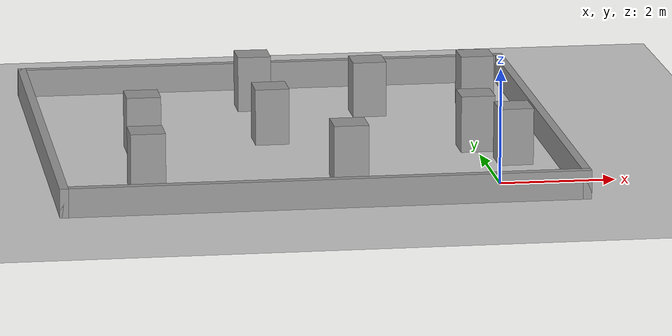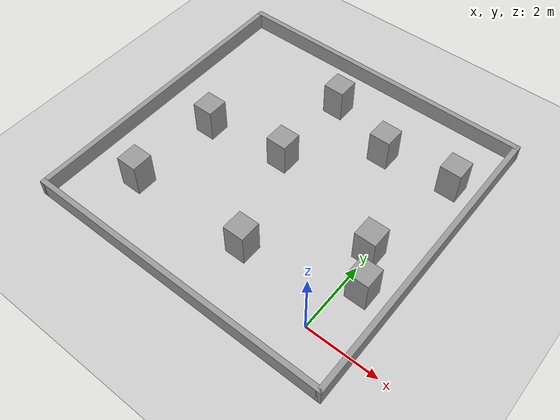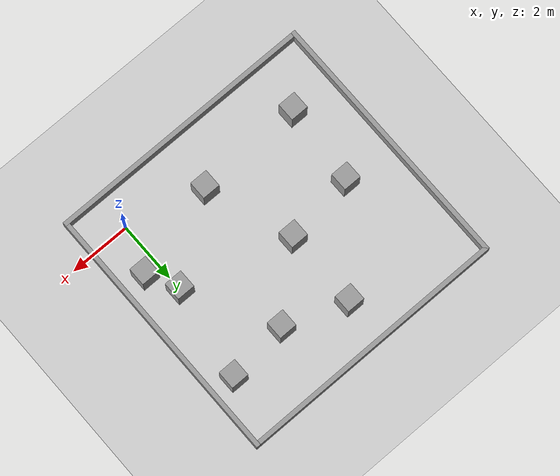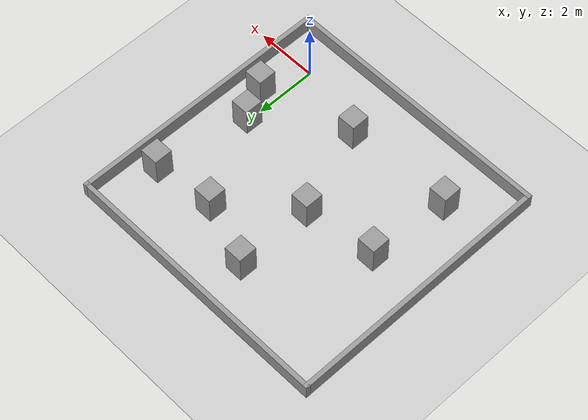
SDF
<sdf version="1.6">
 <world name="default">
  <light name="sun" type="directional">
   <pose>0 0 10 0 -0 0</pose>
   <diffuse>0.8 0.8 0.8 1</diffuse>
   <specular>0.2 0.2 0.2 1</specular>
   <attenuation>
    <range>1000</range>
    <constant>0.9</constant>
    <linear>0.01</linear>
    <quadratic>0.001</quadratic>
   </attenuation>
   <direction>-0.5 0.1 -0.9</direction>
  </light>
  <model name="ground_plane">
   <static>1</static>
   <link name="link">
    <collision name="collision">
     <geometry><plane><normal>0 0 1</normal><size>100 100</size></plane></geometry>
     <surface><friction><ode><mu>100</mu><mu2>50</mu2></ode></friction></surface>
    </collision>
    <visual name="visual">
     <cast_shadows>0</cast_shadows>
     <geometry><plane><normal>0 0 1</normal><size>100 100</size></plane></geometry>
     <material>
      <script><uri>file://media/materials/scripts/gazebo.material</uri><name>Gazebo/Grey</name></script>
     </material>
    </visual>
   </link>
  </model>
  <gravity>0 0 -9.8</gravity>
  <magnetic_field>6e-06 2.3e-05 -4.2e-05</magnetic_field>
  <atmosphere type="adiabatic"/>
  <physics name="default_physics" default="0" type="ode">
   <max_step_size>0.001</max_step_size>
   <real_time_factor>1</real_time_factor>
   <real_time_update_rate>1000</real_time_update_rate>
  </physics>
  <scene><ambient>0.4 0.4 0.4 1</ambient><background>0.7 0.7 0.7 1</background><shadows>1</shadows></scene>
  <audio><device>default</device></audio>
  <spherical_coordinates>
   <surface_model>EARTH_WGS84</surface_model>
   <latitude_deg>0</latitude_deg>
   <longitude_deg>0</longitude_deg>
   <elevation>0</elevation>
   <heading_deg>0</heading_deg>
  </spherical_coordinates>
  <model name="33_room">
   <pose>-3.14392 3.14368 0 0 -0 0</pose>
   <link name="Wall_2">
    <collision name="Wall_2_Collision">
     <geometry><box><size>9 0.15 0.5</size></box></geometry>
     <pose>0 0 0.25 0 -0 0</pose>
    </collision>
    <visual name="Wall_2_Visual">
     <pose>0 0 0.25 0 -0 0</pose>
     <geometry><box><size>9 0.15 0.5</size></box></geometry>
     <material>
      <script><uri>file://media/materials/scripts/gazebo.material</uri><name>Gazebo/Grey</name></script>
      <ambient>1 1 1 1</ambient>
     </material>
     <meta><layer>0</layer></meta>
    </visual>
    <pose>0 -4.3 0 0 -0 0</pose>
   </link>
   <link name="Wall_3">
    <collision name="Wall_3_Collision">
     <geometry><box><size>8.75 0.15 0.5</size></box></geometry>
     <pose>0 0 0.25 0 -0 0</pose>
    </collision>
    <visual name="Wall_3_Visual">
     <pose>0 0 0.25 0 -0 0</pose>
     <geometry><box><size>8.75 0.15 0.5</size></box></geometry>
     <material>
      <script><uri>file://media/materials/scripts/gazebo.material</uri><name>Gazebo/Grey</name></script>
      <ambient>1 1 1 1</ambient>
     </material>
     <meta><layer>0</layer></meta>
    </visual>
    <pose>4.425 0 0 0 -0 1.5708</pose>
   </link>
   <link name="Wall_4">
    <collision name="Wall_4_Collision">
     <geometry><box><size>9 0.15 0.5</size></box></geometry>
     <pose>0 0 0.25 0 -0 0</pose>
    </collision>
    <visual name="Wall_4_Visual">
     <pose>0 0 0.25 0 -0 0</pose>
     <geometry><box><size>9 0.15 0.5</size></box></geometry>
     <material>
      <script><uri>file://media/materials/scripts/gazebo.material</uri><name>Gazebo/Grey</name></script>
      <ambient>1 1 1 1</ambient>
     </material>
     <meta><layer>0</layer></meta>
    </visual>
    <pose>0 4.3 0 0 -0 3.14159</pose>
   </link>
   <link name="Wall_6">
    <collision name="Wall_6_Collision">
     <geometry><box><size>8.75 0.15 0.5</size></box></geometry>
     <pose>0 0 0.25 0 -0 0</pose>
    </collision>
    <visual name="Wall_6_Visual">
     <pose>0 0 0.25 0 -0 0</pose>
     <geometry><box><size>8.75 0.15 0.5</size></box></geometry>
     <material>
      <script><uri>file://media/materials/scripts/gazebo.material</uri><name>Gazebo/Grey</name></script>
      <ambient>1 1 1 1</ambient>
     </material>
     <meta><layer>0</layer></meta>
    </visual>
    <pose>-4.425 0 0 0 -0 -1.5708</pose>
   </link>
   <static>1</static>
  </model>
  <model name="unit_box_A">
   <pose>-3.5 3.5 0.499995 -1e-05 -0 -0</pose>
   <link name="link">
    <inertial>
     <mass>10</mass>
     <inertia>
      <ixx>1.333333</ixx>
      <ixy>0</ixy>
      <ixz>0</ixz>
      <iyy>1.333333</iyy>
      <iyz>0</iyz>
      <izz>1.333333</izz>
     </inertia>
    </inertial>
    <collision name="collision"><geometry><box><size>0.6 0.6 1</size></box></geometry></collision>
    <visual name="visual">
     <geometry><box><size>0.6 0.6 1</size></box></geometry>
     <material>
      <script><name>Gazebo/Grey</name><uri>file://media/materials/scripts/gazebo.material</uri></script>
     </material>
    </visual>
   </link>
  </model>
  <model name="unit_box_C">
   <pose>-5.8 3.2 0.5 0 -0 0</pose>
   <link name="link">
    <inertial>
     <mass>10</mass>
     <inertia>
      <ixx>1.333333</ixx>
      <ixy>0</ixy>
      <ixz>0</ixz>
      <iyy>1.333333</iyy>
      <iyz>0</iyz>
      <izz>1.333333</izz>
     </inertia>
    </inertial>
    <collision name="collision"><geometry><box><size>0.6 0.6 1</size></box></geometry></collision>
    <visual name="visual">
     <geometry><box><size>0.6 0.6 1</size></box></geometry>
     <material>
      <script><name>Gazebo/Grey</name><uri>file://media/materials/scripts/gazebo.material</uri></script>
     </material>
    </visual>
   </link>
  </model>
  <model name="unit_box_B">
   <pose>-1.5 5.3 0.499995 -1e-05 -0 -0</pose>
   <link name="link">
    <inertial>
     <mass>10</mass>
     <inertia>
      <ixx>1.333333</ixx>
      <ixy>0</ixy>
      <ixz>0</ixz>
      <iyy>1.333333</iyy>
      <iyz>0</iyz>
      <izz>1.333333</izz>
     </inertia>
    </inertial>
    <collision name="collision"><geometry><box><size>0.6 0.6 1</size></box></geometry></collision>
    <visual name="visual">
     <geometry><box><size>0.6 0.6 1</size></box></geometry>
     <material>
      <script><name>Gazebo/Grey</name><uri>file://media/materials/scripts/gazebo.material</uri></script>
     </material>
    </visual>
   </link>
  </model>
  <model name="unit_box_D">
   <pose>-3.5 6.0 0.5 0 -0 0</pose>
   <link name="link">
    <inertial>
     <mass>10</mass>
     <inertia>
      <ixx>1.333333</ixx>
      <ixy>0</ixy>
      <ixz>0</ixz>
      <iyy>1.333333</iyy>
      <iyz>0</iyz>
      <izz>1.333333</izz>
     </inertia>
    </inertial>
    <collision name="collision"><geometry><box><size>0.6 0.6 1</size></box></geometry></collision>
    <visual name="visual">
     <geometry><box><size>0.6 0.6 1</size></box></geometry>
     <material>
      <script><name>Gazebo/Grey</name><uri>file://media/materials/scripts/gazebo.material</uri></script>
     </material>
    </visual>
   </link>
  </model>
  <model name="unit_box_E">
   <pose>0.0 2.5 0.5 0 -0 0</pose>
   <link name="link">
    <inertial>
     <mass>10</mass>
     <inertia>
      <ixx>1.333333</ixx>
      <ixy>0</ixy>
      <ixz>0</ixz>
      <iyy>1.333333</iyy>
      <iyz>0</iyz>
      <izz>1.333333</izz>
     </inertia>
    </inertial>
    <collision name="collision"><geometry><box><size>0.6 0.6 1</size></box></geometry></collision>
    <visual name="visual">
     <geometry><box><size>0.6 0.6 1</size></box></geometry>
     <material>
      <script><name>Gazebo/Grey</name><uri>file://media/materials/scripts/gazebo.material</uri></script>
     </material>
    </visual>
   </link>
  </model>
  <model name="unit_box_F">
   <pose>0.5 1.5 0.499995 -1e-05 -0 -0</pose>
   <link name="link">
    <inertial>
     <mass>10</mass>
     <inertia>
      <ixx>1.333333</ixx>
      <ixy>0</ixy>
      <ixz>0</ixz>
      <iyy>1.333333</iyy>
      <iyz>0</iyz>
      <izz>1.333333</izz>
     </inertia>
    </inertial>
    <collision name="collision"><geometry><box><size>0.6 0.6 1</size></box></geometry></collision>
    <visual name="visual">
     <geometry><box><size>0.6 0.6 1</size></box></geometry>
     <material>
      <script><name>Gazebo/Grey</name><uri>file://media/materials/scripts/gazebo.material</uri></script>
     </material>
    </visual>
   </link>
  </model>
  <model name="unit_box_G">
   <pose>0.5 5.5 0.499995 -1e-05 -0 -0</pose>
   <link name="link">
    <inertial>
     <mass>10</mass>
     <inertia>
      <ixx>1.333333</ixx>
      <ixy>0</ixy>
      <ixz>0</ixz>
      <iyy>1.333333</iyy>
      <iyz>0</iyz>
      <izz>1.333333</izz>
     </inertia>
    </inertial>
    <collision name="collision"><geometry><box><size>0.6 0.6 1</size></box></geometry></collision>
    <visual name="visual">
     <geometry><box><size>0.6 0.6 1</size></box></geometry>
     <material>
      <script><name>Gazebo/Grey</name><uri>file://media/materials/scripts/gazebo.material</uri></script>
     </material>
    </visual>
   </link>
  </model>
  <model name="unit_box_H">
   <pose>-2.5 0.7 0.499995 -1e-05 -0 -0</pose>
   <link name="link">
    <inertial>
     <mass>10</mass>
     <inertia>
      <ixx>1.333333</ixx>
      <ixy>0</ixy>
      <ixz>0</ixz>
      <iyy>1.333333</iyy>
      <iyz>0</iyz>
      <izz>1.333333</izz>
     </inertia>
    </inertial>
    <collision name="collision"><geometry><box><size>0.6 0.6 1</size></box></geometry></collision>
    <visual name="visual">
     <geometry><box><size>0.6 0.6 1</size></box></geometry>
     <material>
      <script><name>Gazebo/Grey</name><uri>file://media/materials/scripts/gazebo.material</uri></script>
     </material>
    </visual>
   </link>
  </model>
  <model name="unit_box_K">
   <pose>-6.0 0.6 0.499995 -1e-05 -0 -0</pose>
   <link name="link">
    <inertial>
     <mass>10</mass>
     <inertia>
      <ixx>1.333333</ixx>
      <ixy>0</ixy>
      <ixz>0</ixz>
      <iyy>1.333333</iyy>
      <iyz>0</iyz>
      <izz>1.333333</izz>
     </inertia>
    </inertial>
    <collision name="collision"><geometry><box><size>0.6 0.6 1</size></box></geometry></collision>
    <visual name="visual">
     <geometry><box><size>0.6 0.6 1</size></box></geometry>
     <material>
      <script><name>Gazebo/Grey</name><uri>file://media/materials/scripts/gazebo.material</uri></script>
     </material>
    </visual>
   </link>
  </model>
 </world>
</sdf>
